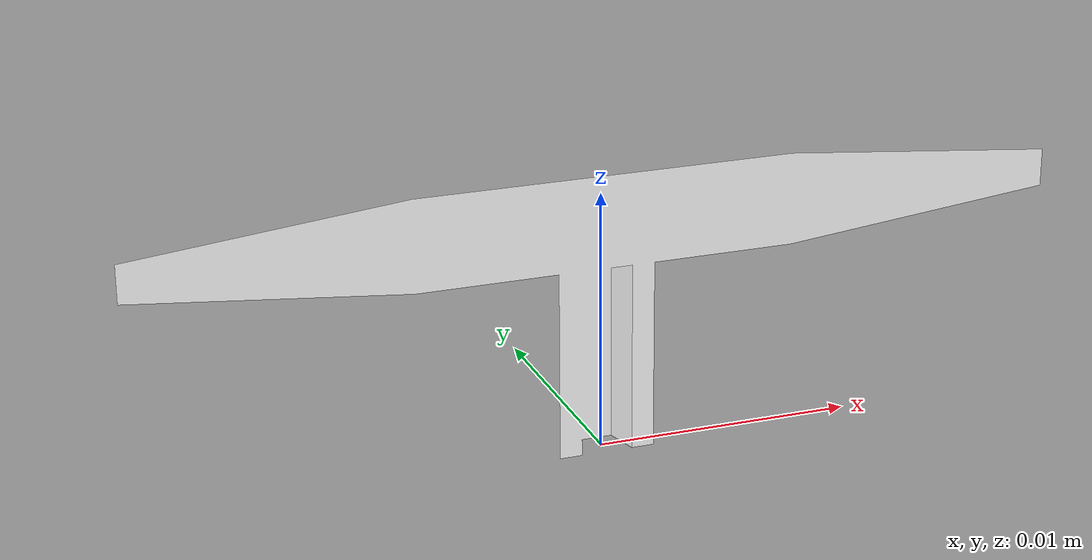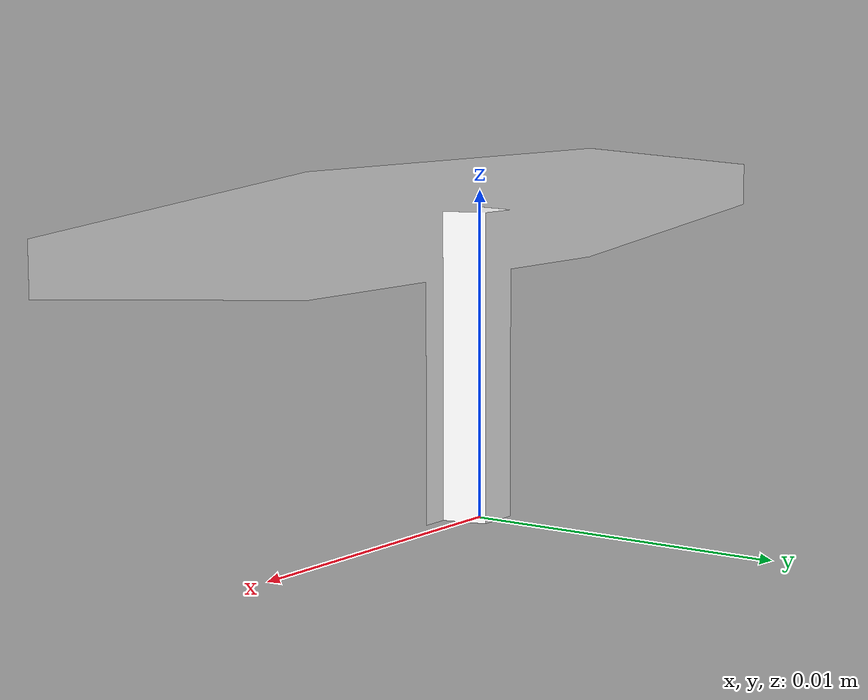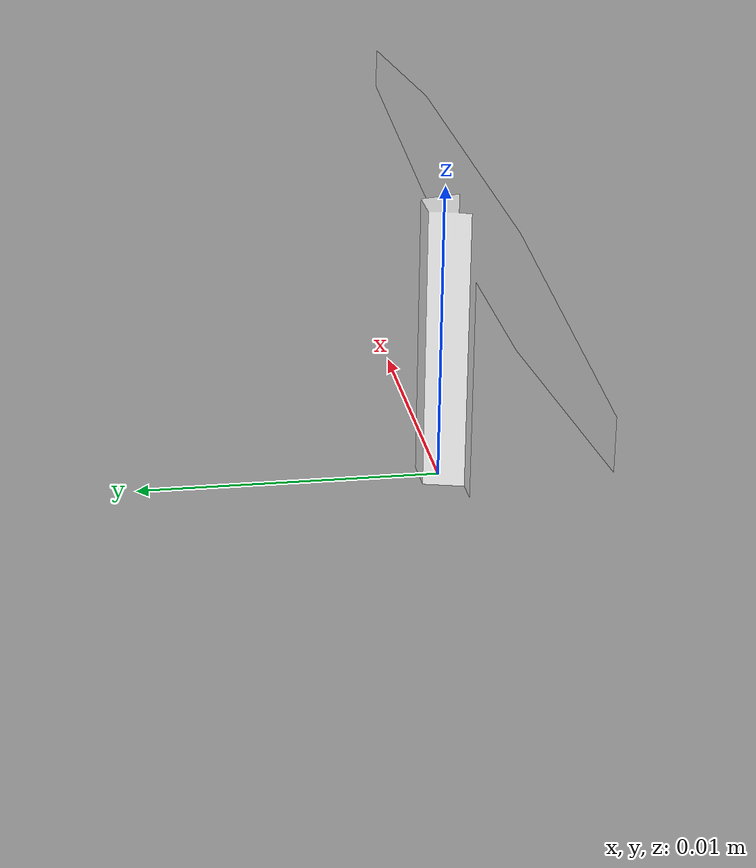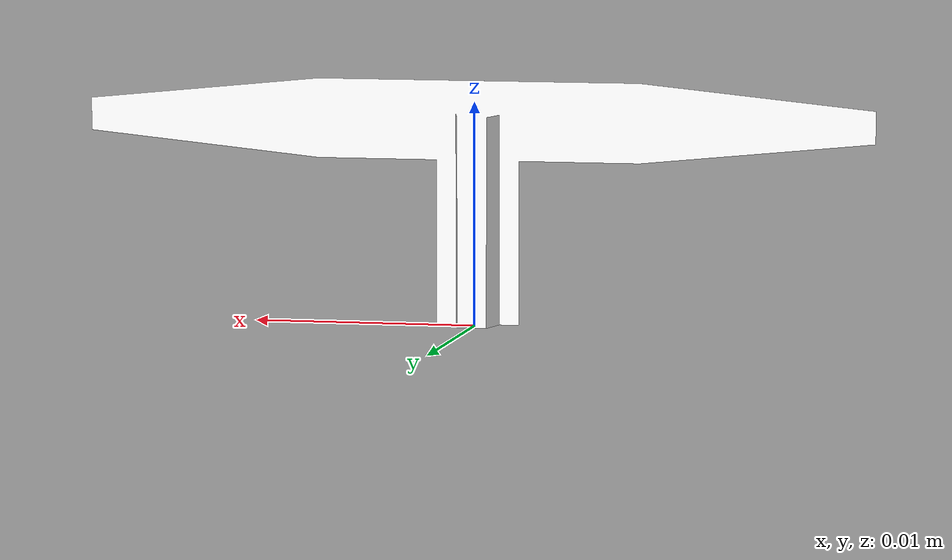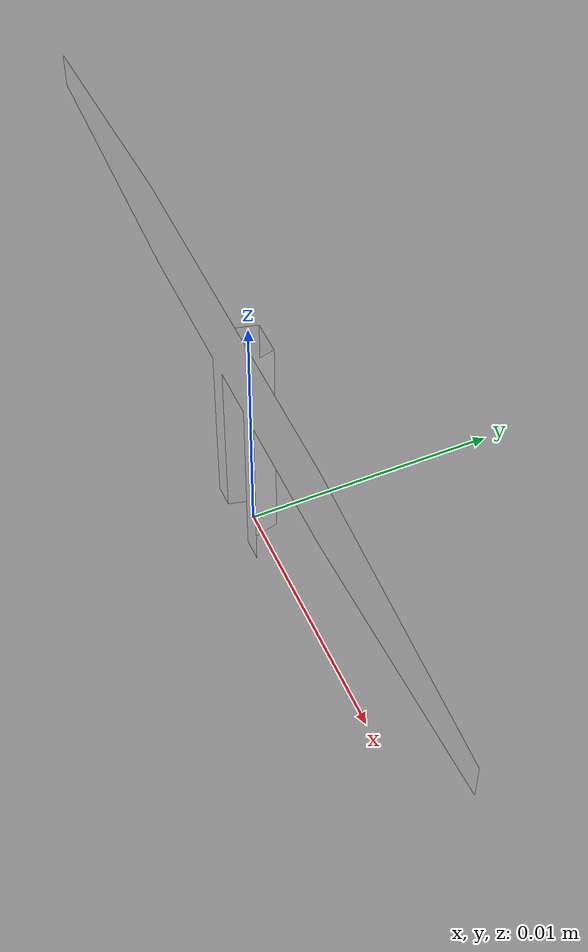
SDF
<?xml version="1.0" ?>
<sdf version="1.5">
  <model name="Stop Sign">
    <static>true</static>
    <link name="link">
      <collision name="collision">
        <geometry>
          <mesh>
            <uri>model://stop_sign/meshes/stop_sign.dae</uri>
            <scale>0.06 0.06 0.06</scale>
          </mesh>
        </geometry>
      </collision>
      <visual name="visual">
        <geometry>
          <mesh>
            <uri>model://stop_sign/meshes/stop_sign.dae</uri>
            <scale>0.06 0.06 0.006</scale>
          </mesh>
        </geometry>
        <material>
          <script>
            <uri>model://stop_sign/materials/scripts</uri>
            <uri>model://stop_sign/materials/textures</uri>
            <name>StopSign/Diffuse</name>
          </script>
        </material>
      </visual>
    </link>
  </model>
</sdf>
